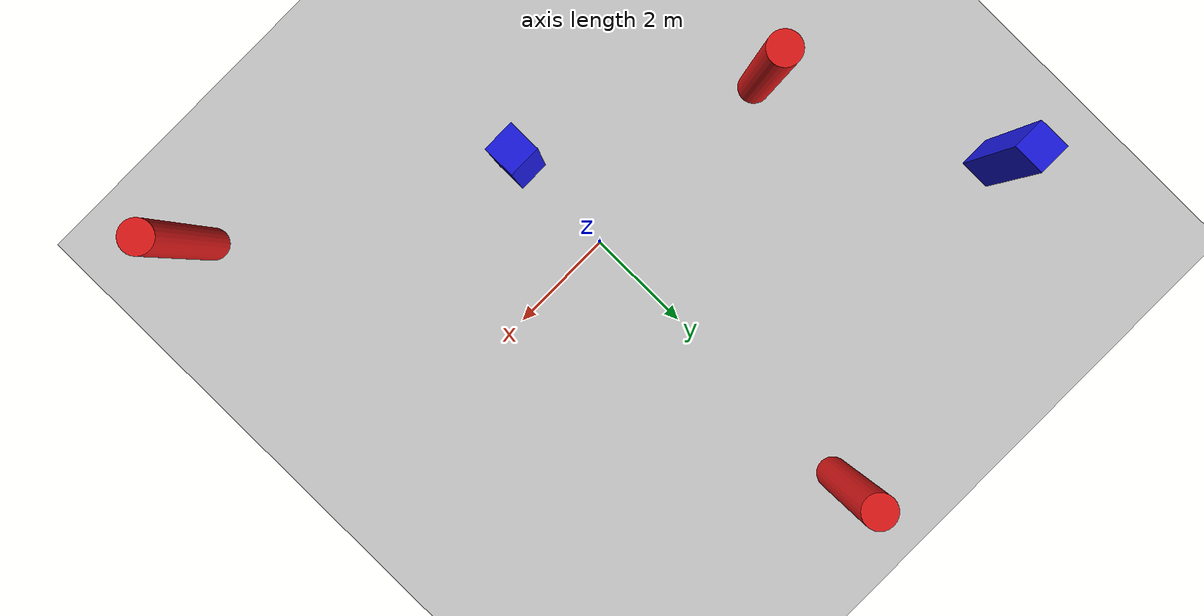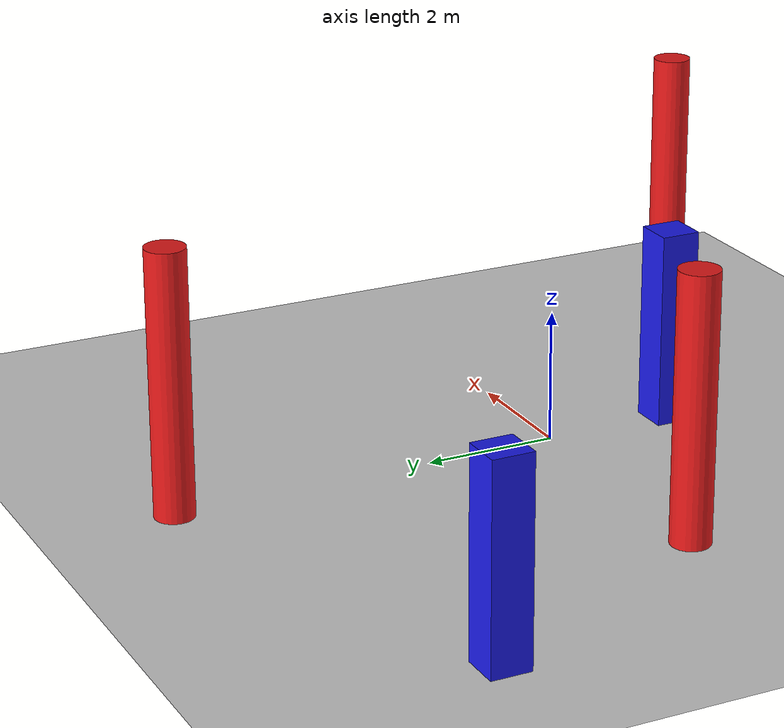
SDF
<sdf version="1.7">
 <world name="dynamic_avoidance">
  <light name="sun" type="directional">
   <pose>0 0 10 0 -0 0</pose>
   <diffuse>0.8 0.8 0.8 1</diffuse>
   <specular>0.2 0.2 0.2 1</specular>
   <attenuation>
    <range>1000</range>
    <constant>0.9</constant>
    <linear>0.01</linear>
    <quadratic>0.001</quadratic>
   </attenuation>
   <direction>-0.5 0.1 -0.9</direction>
   <spot><inner_angle>0</inner_angle><outer_angle>0</outer_angle><falloff>0</falloff></spot>
  </light>
  <model name="ground_plane">
   <static>1</static>
   <link name="link">
    <collision name="collision">
     <geometry><plane><normal>0 0 1</normal><size>100 100</size></plane></geometry>
     <surface>
      <contact><collide_bitmask>65535</collide_bitmask></contact>
      <friction><ode><mu>100</mu><mu2>50</mu2></ode></friction>
     </surface>
    </collision>
    <visual name="visual">
     <cast_shadows>0</cast_shadows>
     <geometry><plane><normal>0 0 1</normal><size>100 100</size></plane></geometry>
     <material>
      <script><uri>file://media/materials/scripts/gazebo.material</uri><name>Gazebo/Grey</name></script>
     </material>
    </visual>
   </link>
  </model>
  <gravity>0 0 -9.8</gravity>
  <magnetic_field>6e-06 2.3e-05 -4.2e-05</magnetic_field>
  <atmosphere type="adiabatic"/>
  <physics type="ode">
   <max_step_size>0.001</max_step_size>
   <real_time_factor>1</real_time_factor>
   <real_time_update_rate>1000</real_time_update_rate>
  </physics>
  <scene><ambient>0.4 0.4 0.4 1</ambient><background>0.7 0.7 0.7 1</background><shadows>1</shadows></scene>
  <spherical_coordinates>
   <surface_model>EARTH_WGS84</surface_model>
   <latitude_deg>0</latitude_deg>
   <longitude_deg>0</longitude_deg>
   <elevation>0</elevation>
   <heading_deg>0</heading_deg>
  </spherical_coordinates>
  <include><uri>model://moving_cylinder</uri><name>obstacle_cylinder_1</name><pose>0 6 2 0 0 0</pose></include>
  <include><uri>model://moving_cylinder</uri><name>obstacle_cylinder_2</name><pose>-4 0 2 0 0 0</pose></include>
  <include><uri>model://moving_cylinder</uri><name>obstacle_cylinder_3</name><pose>5 -5 2 0 0 0</pose></include>
  <include><uri>model://moving_box</uri><name>obstacle_box_1</name><pose>0 -2 1.5 0 0 0</pose></include>
  <include><uri>model://moving_box</uri><name>obstacle_box_2</name><pose>-6 4 1.5 0 0 0</pose></include>
 </world>
</sdf>

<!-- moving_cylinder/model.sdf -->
<sdf version="1.5">
  <model name="moving_cylinder">
    <static>0</static>
    <link name="link">
      <inertial>
        <mass>10.0</mass>
        <inertia>
          <ixx>0.1</ixx>
          <iyy>0.1</iyy>
          <izz>0.1</izz>
        </inertia>
      </inertial>
      <collision name="collision">
        <geometry>
          <cylinder>
            <radius>0.3</radius>
            <length>4.0</length>
          </cylinder>
        </geometry>
        <surface>
          <contact>
            <ode/>
          </contact>
          <bounce/>
          <friction>
            <torsional>
              <ode/>
            </torsional>
            <ode/>
          </friction>
        </surface>
        <max_contacts>10</max_contacts>
      </collision>
      <visual name="visual">
        <geometry>
          <cylinder>
            <radius>0.3</radius>
            <length>4.0</length>
          </cylinder>
        </geometry>
        <material>
          <ambient>0.9 0.1 0.1 1</ambient>
          <diffuse>0.9 0.1 0.1 1</diffuse>
          <specular>0.3 0.3 0.3 1</specular>
        </material>
      </visual>
      <self_collide>0</self_collide>
      <enable_wind>0</enable_wind>
      <kinematic>0</kinematic>
    </link>
  </model>
</sdf>

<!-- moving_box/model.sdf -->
<sdf version="1.5">
  <model name="moving_box">
    <static>0</static>
    <link name="link">
      <inertial>
        <mass>15.0</mass>
        <inertia>
          <ixx>0.5</ixx>
          <iyy>0.5</iyy>
          <izz>0.5</izz>
        </inertia>
      </inertial>
      <collision name="collision">
        <geometry>
          <box>
            <size>0.6 0.6 3.0</size>
          </box>
        </geometry>
        <surface>
          <contact>
            <ode/>
          </contact>
          <bounce/>
          <friction>
            <torsional>
              <ode/>
            </torsional>
            <ode/>
          </friction>
        </surface>
        <max_contacts>10</max_contacts>
      </collision>
      <visual name="visual">
        <geometry>
          <box>
            <size>0.6 0.6 3.0</size>
          </box>
        </geometry>
        <material>
          <ambient>0.1 0.1 0.9 1</ambient>
          <diffuse>0.1 0.1 0.9 1</diffuse>
          <specular>0.3 0.3 0.3 1</specular>
        </material>
      </visual>
      <self_collide>0</self_collide>
      <enable_wind>0</enable_wind>
      <kinematic>0</kinematic>
    </link>
  </model>
</sdf>
